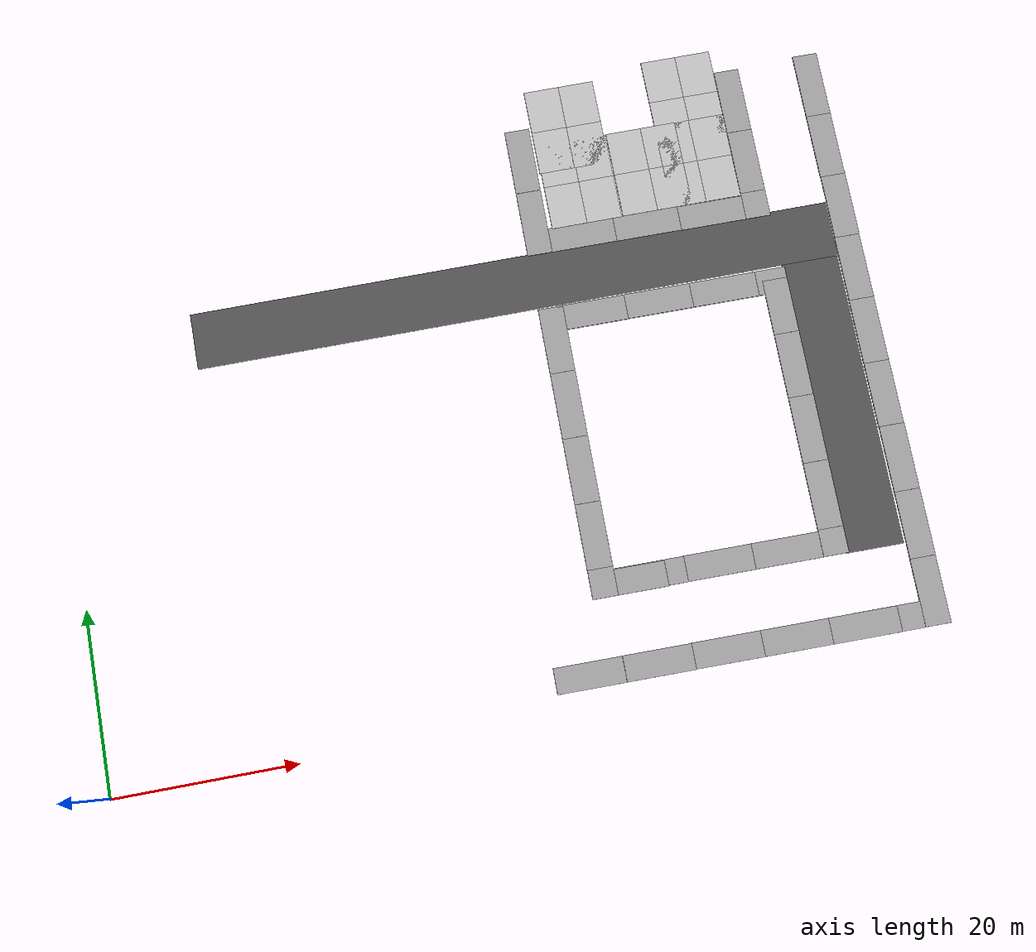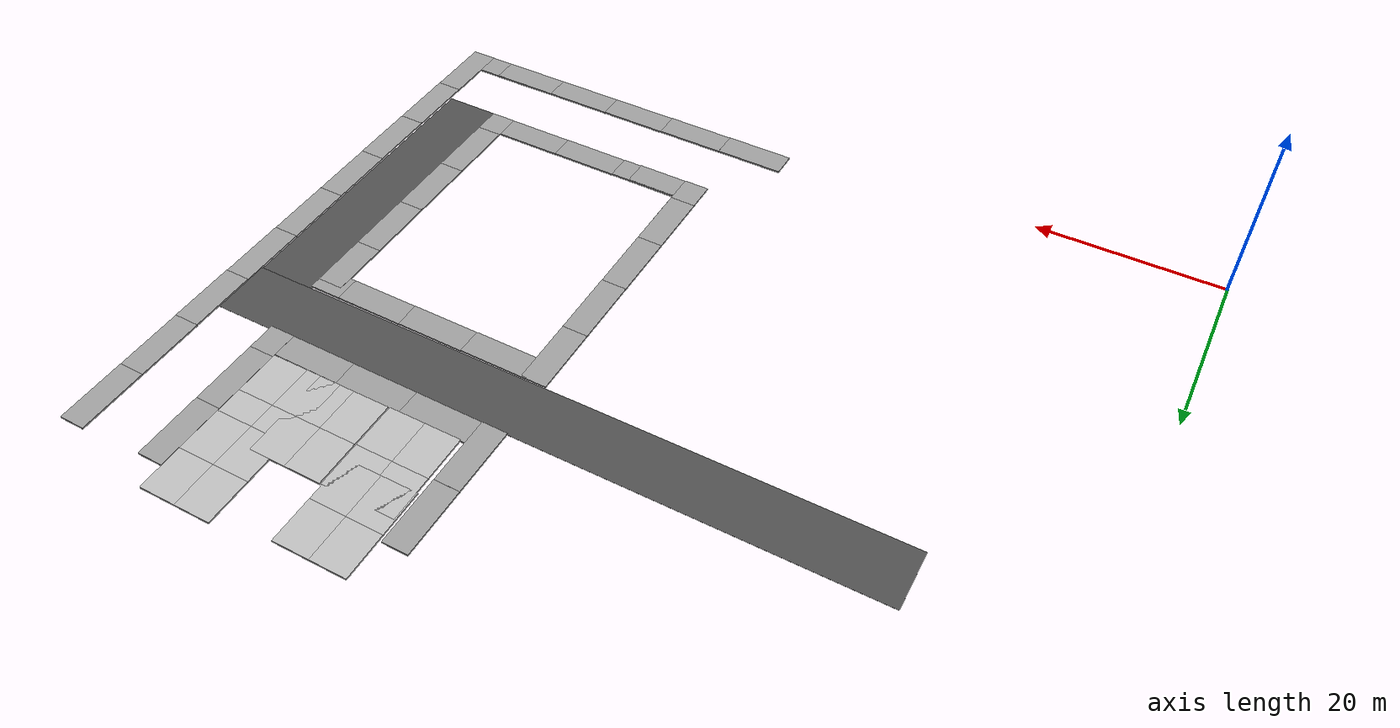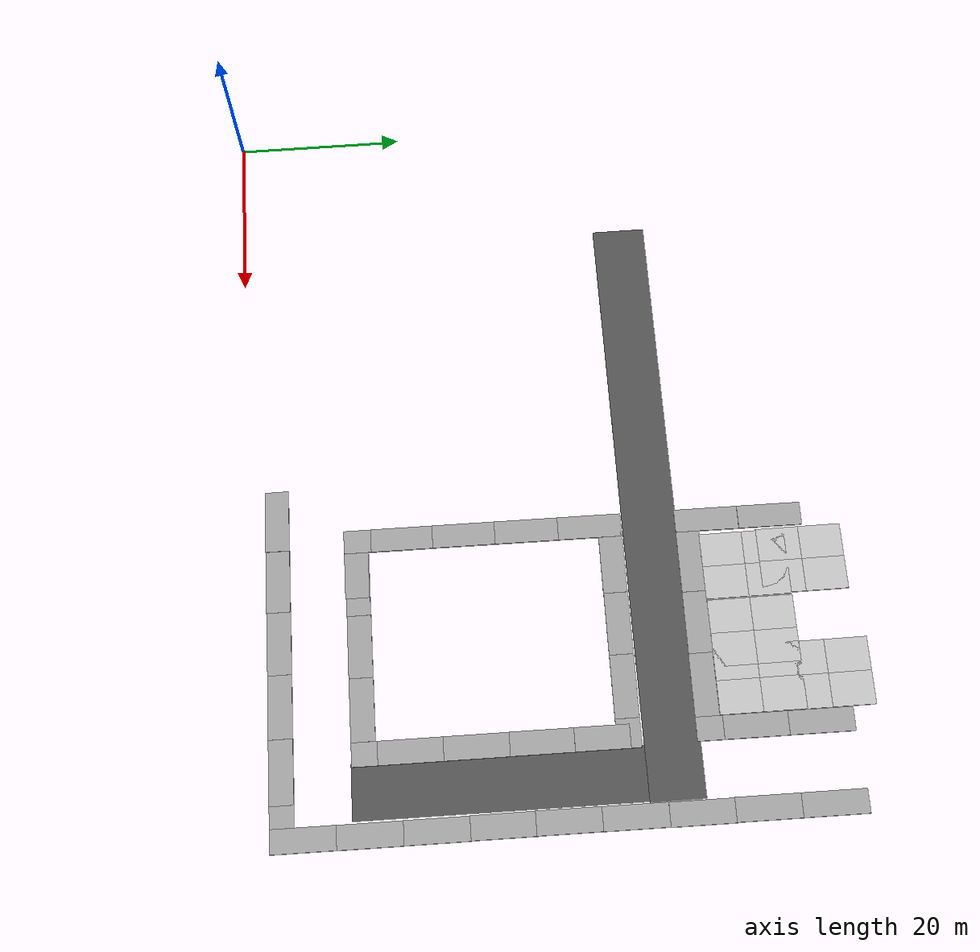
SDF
<sdf version="1.6">
 <world name="default">
  <model name="grey_wall_clone_clone_10_clone_2">
   <static>1</static>
   <link name="link">
    <pose>0 0 1.4 0 -0 0</pose>
    <collision name="collision"><geometry><box><size>7.5 0.2 2.8</size></box></geometry></collision>
    <visual name="visual">
     <cast_shadows>0</cast_shadows>
     <geometry><box><size>7.5 0.2 2.8</size></box></geometry>
     <material>
      <script>
       <uri>model://grey_wall/materials/scripts</uri>
       <uri>model://grey_wall/materials/textures</uri>
       <name>vrc/grey_wall</name>
      </script>
     </material>
    </visual>
   </link>
   <pose>51.6181 4.83221 -0.013794 -1.5862 0.002658 3.13547</pose>
  </model>
  <model name="grey_wall_clone_clone_10_clone_3">
   <static>1</static>
   <link name="link">
    <pose>0 0 1.4 0 -0 0</pose>
    <collision name="collision"><geometry><box><size>7.5 0.2 2.8</size></box></geometry></collision>
    <visual name="visual">
     <cast_shadows>0</cast_shadows>
     <geometry><box><size>7.5 0.2 2.8</size></box></geometry>
     <material>
      <script>
       <uri>model://grey_wall/materials/scripts</uri>
       <uri>model://grey_wall/materials/textures</uri>
       <name>vrc/grey_wall</name>
      </script>
     </material>
    </visual>
   </link>
   <pose>59.1382 4.80138 -0.016498 -1.5862 0.002658 3.13547</pose>
  </model>
  <model name="grey_wall_clone_clone_10_clone_3_clone">
   <static>1</static>
   <link name="link">
    <pose>0 0 1.4 0 -0 0</pose>
    <collision name="collision"><geometry><box><size>7.5 0.2 2.8</size></box></geometry></collision>
    <visual name="visual">
     <cast_shadows>0</cast_shadows>
     <geometry><box><size>7.5 0.2 2.8</size></box></geometry>
     <material>
      <script>
       <uri>model://grey_wall/materials/scripts</uri>
       <uri>model://grey_wall/materials/textures</uri>
       <name>vrc/grey_wall</name>
      </script>
     </material>
    </visual>
   </link>
   <pose>66.6247 4.78706 -0.016498 -1.5862 0.002658 3.13547</pose>
  </model>
  <model name="grey_wall_clone_clone_10_clone_3_clone_0">
   <static>1</static>
   <link name="link">
    <pose>0 0 1.4 0 -0 0</pose>
    <collision name="collision"><geometry><box><size>7.5 0.2 2.8</size></box></geometry></collision>
    <visual name="visual">
     <cast_shadows>0</cast_shadows>
     <geometry><box><size>7.5 0.2 2.8</size></box></geometry>
     <material>
      <script>
       <uri>model://grey_wall/materials/scripts</uri>
       <uri>model://grey_wall/materials/textures</uri>
       <name>vrc/grey_wall</name>
      </script>
     </material>
    </visual>
   </link>
   <pose>74.0722 4.73995 -0.016498 -1.5862 0.002658 3.13547</pose>
  </model>
  <model name="grey_wall_clone_clone_10_clone_3_clone_1">
   <static>1</static>
   <link name="link">
    <pose>0 0 1.4 0 -0 0</pose>
    <collision name="collision"><geometry><box><size>7.5 0.2 2.8</size></box></geometry></collision>
    <visual name="visual">
     <cast_shadows>0</cast_shadows>
     <geometry><box><size>7.5 0.2 2.8</size></box></geometry>
     <material>
      <script>
       <uri>model://grey_wall/materials/scripts</uri>
       <uri>model://grey_wall/materials/textures</uri>
       <name>vrc/grey_wall</name>
      </script>
     </material>
    </visual>
   </link>
   <pose>81.5711 4.6927 -0.016498 -1.5862 0.002658 3.13547</pose>
  </model>
  <model name="grey_wall_clone_clone_10_clone_3_clone_1_clone">
   <static>1</static>
   <link name="link">
    <pose>0 0 1.4 0 -0 0</pose>
    <collision name="collision"><geometry><box><size>7.5 0.2 2.8</size></box></geometry></collision>
    <visual name="visual">
     <cast_shadows>0</cast_shadows>
     <geometry><box><size>7.5 0.2 2.8</size></box></geometry>
     <material>
      <script>
       <uri>model://grey_wall/materials/scripts</uri>
       <uri>model://grey_wall/materials/textures</uri>
       <name>vrc/grey_wall</name>
      </script>
     </material>
    </visual>
   </link>
   <pose>84.1226 4.69737 -0.017706 -1.5862 0.002658 3.13547</pose>
  </model>
  <model name="grey_wall_clone_clone_9_clone_26_clone">
   <static>1</static>
   <link name="link">
    <pose>0 0 1.4 0 -0 0</pose>
    <collision name="collision"><geometry><box><size>7.5 0.2 2.8</size></box></geometry></collision>
    <visual name="visual">
     <cast_shadows>0</cast_shadows>
     <geometry><box><size>7.5 0.2 2.8</size></box></geometry>
     <material>
      <script>
       <uri>model://grey_wall/materials/scripts</uri>
       <uri>model://grey_wall/materials/textures</uri>
       <name>vrc/grey_wall</name>
      </script>
     </material>
    </visual>
   </link>
   <pose>90.6631 5.6235 -0.017166 -1.57343 0.001892 1.56332</pose>
  </model>
  <model name="grey_wall_clone_clone_9_clone_26_clone_0">
   <static>1</static>
   <link name="link">
    <pose>0 0 1.4 0 -0 0</pose>
    <collision name="collision"><geometry><box><size>7.5 0.2 2.8</size></box></geometry></collision>
    <visual name="visual">
     <cast_shadows>0</cast_shadows>
     <geometry><box><size>7.5 0.2 2.8</size></box></geometry>
     <material>
      <script>
       <uri>model://grey_wall/materials/scripts</uri>
       <uri>model://grey_wall/materials/textures</uri>
       <name>vrc/grey_wall</name>
      </script>
     </material>
    </visual>
   </link>
   <pose>90.7336 13.0047 -0.017166 -1.57343 0.001892 1.56332</pose>
  </model>
  <model name="grey_wall_clone_clone_9_clone_26_clone_0_clone">
   <static>1</static>
   <link name="link">
    <pose>0 0 1.4 0 -0 0</pose>
    <collision name="collision"><geometry><box><size>7.5 0.2 2.8</size></box></geometry></collision>
    <visual name="visual">
     <cast_shadows>0</cast_shadows>
     <geometry><box><size>7.5 0.2 2.8</size></box></geometry>
     <material>
      <script>
       <uri>model://grey_wall/materials/scripts</uri>
       <uri>model://grey_wall/materials/textures</uri>
       <name>vrc/grey_wall</name>
      </script>
     </material>
    </visual>
   </link>
   <pose>90.7792 20.4331 -0.017166 -1.57343 0.001892 1.56332</pose>
  </model>
  <model name="grey_wall_clone_clone_9_clone_26_clone_0_clone_0">
   <static>1</static>
   <link name="link">
    <pose>0 0 1.4 0 -0 0</pose>
    <collision name="collision"><geometry><box><size>7.5 0.2 2.8</size></box></geometry></collision>
    <visual name="visual">
     <cast_shadows>0</cast_shadows>
     <geometry><box><size>7.5 0.2 2.8</size></box></geometry>
     <material>
      <script>
       <uri>model://grey_wall/materials/scripts</uri>
       <uri>model://grey_wall/materials/textures</uri>
       <name>vrc/grey_wall</name>
      </script>
     </material>
    </visual>
   </link>
   <pose>90.7983 27.8211 -0.017166 -1.57343 0.001892 1.56332</pose>
  </model>
  <model name="grey_wall_clone_clone_9_clone_26_clone_0_clone_1">
   <static>1</static>
   <link name="link">
    <pose>0 0 1.4 0 -0 0</pose>
    <collision name="collision"><geometry><box><size>7.5 0.2 2.8</size></box></geometry></collision>
    <visual name="visual">
     <cast_shadows>0</cast_shadows>
     <geometry><box><size>7.5 0.2 2.8</size></box></geometry>
     <material>
      <script>
       <uri>model://grey_wall/materials/scripts</uri>
       <uri>model://grey_wall/materials/textures</uri>
       <name>vrc/grey_wall</name>
      </script>
     </material>
    </visual>
   </link>
   <pose>90.8333 35.096 -0.017166 -1.57343 0.001892 1.56332</pose>
  </model>
  <model name="grey_wall_clone_clone_9_clone_26_clone_0_clone_2">
   <static>1</static>
   <link name="link">
    <pose>0 0 1.4 0 -0 0</pose>
    <collision name="collision"><geometry><box><size>7.5 0.2 2.8</size></box></geometry></collision>
    <visual name="visual">
     <cast_shadows>0</cast_shadows>
     <geometry><box><size>7.5 0.2 2.8</size></box></geometry>
     <material>
      <script>
       <uri>model://grey_wall/materials/scripts</uri>
       <uri>model://grey_wall/materials/textures</uri>
       <name>vrc/grey_wall</name>
      </script>
     </material>
    </visual>
   </link>
   <pose>90.9059 42.4997 -0.017166 -1.57343 0.001892 1.56332</pose>
  </model>
  <model name="grey_wall_clone_clone_9_clone_26_clone_0_clone_2_clone">
   <static>1</static>
   <link name="link">
    <pose>0 0 1.4 0 -0 0</pose>
    <collision name="collision"><geometry><box><size>7.5 0.2 2.8</size></box></geometry></collision>
    <visual name="visual">
     <cast_shadows>0</cast_shadows>
     <geometry><box><size>7.5 0.2 2.8</size></box></geometry>
     <material>
      <script>
       <uri>model://grey_wall/materials/scripts</uri>
       <uri>model://grey_wall/materials/textures</uri>
       <name>vrc/grey_wall</name>
      </script>
     </material>
    </visual>
   </link>
   <pose>90.9958 49.9713 -0.017166 -1.57343 0.001892 1.56332</pose>
  </model>
  <model name="grey_wall_clone_clone_9_clone_26_clone_0_clone_2_clone_0">
   <static>1</static>
   <link name="link">
    <pose>0 0 1.4 0 -0 0</pose>
    <collision name="collision"><geometry><box><size>7.5 0.2 2.8</size></box></geometry></collision>
    <visual name="visual">
     <cast_shadows>0</cast_shadows>
     <geometry><box><size>7.5 0.2 2.8</size></box></geometry>
     <material>
      <script>
       <uri>model://grey_wall/materials/scripts</uri>
       <uri>model://grey_wall/materials/textures</uri>
       <name>vrc/grey_wall</name>
      </script>
     </material>
    </visual>
   </link>
   <pose>91.0088 57.3369 -0.017166 -1.57343 0.001892 1.56332</pose>
  </model>
  <model name="grey_wall_clone_clone_9_clone_26_clone_0_clone_2_clone_1">
   <static>1</static>
   <link name="link">
    <pose>0 0 1.4 0 -0 0</pose>
    <collision name="collision"><geometry><box><size>7.5 0.2 2.8</size></box></geometry></collision>
    <visual name="visual">
     <cast_shadows>0</cast_shadows>
     <geometry><box><size>7.5 0.2 2.8</size></box></geometry>
     <material>
      <script>
       <uri>model://grey_wall/materials/scripts</uri>
       <uri>model://grey_wall/materials/textures</uri>
       <name>vrc/grey_wall</name>
      </script>
     </material>
    </visual>
   </link>
   <pose>91.0605 64.7691 -0.017166 -1.57343 0.001892 1.56332</pose>
  </model>
  <model name="grey_wall_clone_clone_9_clone_26_clone_0_clone_2_clone_4_clone_2_clone_22">
   <static>1</static>
   <link name="link">
    <pose>0 0 1.4 0 -0 0</pose>
    <collision name="collision"><geometry><box><size>7.5 0.2 2.8</size></box></geometry></collision>
    <visual name="visual">
     <cast_shadows>0</cast_shadows>
     <geometry><box><size>7.5 0.2 2.8</size></box></geometry>
     <material>
      <script>
       <uri>model://grey_wall/materials/scripts</uri>
       <uri>model://grey_wall/materials/textures</uri>
       <name>vrc/grey_wall</name>
      </script>
     </material>
    </visual>
   </link>
   <pose>81.6977 64.4825 -0.017166 -1.57343 0.001892 1.56332</pose>
  </model>
  <model name="grey_wall_clone_clone_9_clone_26_clone_0_clone_2_clone_4_clone_2_clone_23">
   <static>1</static>
   <link name="link">
    <pose>0 0 1.4 0 -0 0</pose>
    <collision name="collision"><geometry><box><size>7.5 0.2 2.8</size></box></geometry></collision>
    <visual name="visual">
     <cast_shadows>0</cast_shadows>
     <geometry><box><size>7.5 0.2 2.8</size></box></geometry>
     <material>
      <script>
       <uri>model://grey_wall/materials/scripts</uri>
       <uri>model://grey_wall/materials/textures</uri>
       <name>vrc/grey_wall</name>
      </script>
     </material>
    </visual>
   </link>
   <pose>81.6523 57.0631 -0.017166 -1.57343 0.001892 1.56332</pose>
  </model>
  <model name="grey_wall_clone_clone_9_clone_26_clone_0_clone_2_clone_4_clone_2_clone_24">
   <static>1</static>
   <link name="link">
    <pose>0 0 1.4 0 -0 0</pose>
    <collision name="collision"><geometry><box><size>7.5 0.2 2.8</size></box></geometry></collision>
    <visual name="visual">
     <cast_shadows>0</cast_shadows>
     <geometry><box><size>7.5 0.2 2.8</size></box></geometry>
     <material>
      <script>
       <uri>model://grey_wall/materials/scripts</uri>
       <uri>model://grey_wall/materials/textures</uri>
       <name>vrc/grey_wall</name>
      </script>
     </material>
    </visual>
   </link>
   <pose>81.6323 53.952 -0.017166 -1.57343 0.001892 1.56332</pose>
  </model>
  <model name="grey_wall_clone_clone_9_clone_26_clone_0_clone_2_clone_4_clone_2_clone_25">
   <static>1</static>
   <link name="link">
    <pose>0 0 1.4 0 -0 0</pose>
    <collision name="collision"><geometry><box><size>7.5 0.2 2.8</size></box></geometry></collision>
    <visual name="visual">
     <cast_shadows>0</cast_shadows>
     <geometry><box><size>7.5 0.2 2.8</size></box></geometry>
     <material>
      <script>
       <uri>model://grey_wall/materials/scripts</uri>
       <uri>model://grey_wall/materials/textures</uri>
       <name>vrc/grey_wall</name>
      </script>
     </material>
    </visual>
   </link>
   <pose>56.5378 54.1438 -0.017166 -1.57343 0.001892 1.56332</pose>
  </model>
  <model name="grey_wall_clone_clone_9_clone_26_clone_0_clone_2_clone_4_clone_2_clone_26">
   <static>1</static>
   <link name="link">
    <pose>0 0 1.4 0 -0 0</pose>
    <collision name="collision"><geometry><box><size>7.5 0.2 2.8</size></box></geometry></collision>
    <visual name="visual">
     <cast_shadows>0</cast_shadows>
     <geometry><box><size>7.5 0.2 2.8</size></box></geometry>
     <material>
      <script>
       <uri>model://grey_wall/materials/scripts</uri>
       <uri>model://grey_wall/materials/textures</uri>
       <name>vrc/grey_wall</name>
      </script>
     </material>
    </visual>
   </link>
   <pose>56.5858 61.6588 -0.017166 -1.57343 0.001892 1.56332</pose>
  </model>
  <model name="grey_wall_clone_clone_9_clone_26_clone_0_clone_2_clone_4_clone_2_clone_53">
   <static>1</static>
   <link name="link">
    <pose>0 0 1.4 0 -0 0</pose>
    <collision name="collision"><geometry><box><size>7.5 0.2 2.8</size></box></geometry></collision>
    <visual name="visual">
     <cast_shadows>0</cast_shadows>
     <geometry><box><size>7.5 0.2 2.8</size></box></geometry>
     <material>
      <script>
       <uri>model://grey_wall/materials/scripts</uri>
       <uri>model://grey_wall/materials/textures</uri>
       <name>vrc/grey_wall</name>
      </script>
     </material>
    </visual>
   </link>
   <pose>56.4437 40.252 -0.017166 -1.57343 0.001892 1.56332</pose>
  </model>
  <model name="grey_wall_clone_clone_9_clone_26_clone_0_clone_2_clone_4_clone_2_clone_54">
   <static>1</static>
   <link name="link">
    <pose>0 0 1.4 0 -0 0</pose>
    <collision name="collision"><geometry><box><size>7.5 0.2 2.8</size></box></geometry></collision>
    <visual name="visual">
     <cast_shadows>0</cast_shadows>
     <geometry><box><size>7.5 0.2 2.8</size></box></geometry>
     <material>
      <script>
       <uri>model://grey_wall/materials/scripts</uri>
       <uri>model://grey_wall/materials/textures</uri>
       <name>vrc/grey_wall</name>
      </script>
     </material>
    </visual>
   </link>
   <pose>56.3934 32.7667 -0.017297 -1.57343 0.001892 1.56332</pose>
  </model>
  <model name="grey_wall_clone_clone_9_clone_26_clone_0_clone_2_clone_4_clone_2_clone_55">
   <static>1</static>
   <link name="link">
    <pose>0 0 1.4 0 -0 0</pose>
    <collision name="collision"><geometry><box><size>7.5 0.2 2.8</size></box></geometry></collision>
    <visual name="visual">
     <cast_shadows>0</cast_shadows>
     <geometry><box><size>7.5 0.2 2.8</size></box></geometry>
     <material>
      <script>
       <uri>model://grey_wall/materials/scripts</uri>
       <uri>model://grey_wall/materials/textures</uri>
       <name>vrc/grey_wall</name>
      </script>
     </material>
    </visual>
   </link>
   <pose>56.334 25.3981 -0.017166 -1.57343 0.001892 1.56332</pose>
  </model>
  <model name="grey_wall_clone_clone_9_clone_26_clone_0_clone_2_clone_4_clone_2_clone_56">
   <static>1</static>
   <link name="link">
    <pose>0 0 1.4 0 -0 0</pose>
    <collision name="collision"><geometry><box><size>7.5 0.2 2.8</size></box></geometry></collision>
    <visual name="visual">
     <cast_shadows>0</cast_shadows>
     <geometry><box><size>7.5 0.2 2.8</size></box></geometry>
     <material>
      <script>
       <uri>model://grey_wall/materials/scripts</uri>
       <uri>model://grey_wall/materials/textures</uri>
       <name>vrc/grey_wall</name>
      </script>
     </material>
    </visual>
   </link>
   <pose>56.286 18.1505 -0.017166 -1.57343 0.001892 1.56332</pose>
  </model>
  <model name="grey_wall_clone_clone_9_clone_26_clone_0_clone_2_clone_4_clone_2_clone_57">
   <static>1</static>
   <link name="link">
    <pose>0 0 1.4 0 -0 0</pose>
    <collision name="collision"><geometry><box><size>7.5 0.2 2.8</size></box></geometry></collision>
    <visual name="visual">
     <cast_shadows>0</cast_shadows>
     <geometry><box><size>7.5 0.2 2.8</size></box></geometry>
     <material>
      <script>
       <uri>model://grey_wall/materials/scripts</uri>
       <uri>model://grey_wall/materials/textures</uri>
       <name>vrc/grey_wall</name>
      </script>
     </material>
    </visual>
   </link>
   <pose>56.2753 14.9633 -0.017395 -1.57343 0.001892 1.56332</pose>
  </model>
  <model name="grey_wall_clone_clone_9_clone_26_clone_0_clone_2_clone_4_clone_2_clone_58">
   <static>1</static>
   <link name="link">
    <pose>0 0 1.4 0 -0 0</pose>
    <collision name="collision"><geometry><box><size>7.5 0.2 2.8</size></box></geometry></collision>
    <visual name="visual">
     <cast_shadows>0</cast_shadows>
     <geometry><box><size>7.5 0.2 2.8</size></box></geometry>
     <material>
      <script>
       <uri>model://grey_wall/materials/scripts</uri>
       <uri>model://grey_wall/materials/textures</uri>
       <name>vrc/grey_wall</name>
      </script>
     </material>
    </visual>
   </link>
   <pose>81.795 40.1296 -0.016945 -1.57343 0.001892 1.56332</pose>
  </model>
  <model name="grey_wall_clone_clone_9_clone_26_clone_0_clone_2_clone_4_clone_2_clone_59">
   <static>1</static>
   <link name="link">
    <pose>0 0 1.4 0 -0 0</pose>
    <collision name="collision"><geometry><box><size>7.5 0.2 2.8</size></box></geometry></collision>
    <visual name="visual">
     <cast_shadows>0</cast_shadows>
     <geometry><box><size>7.5 0.2 2.8</size></box></geometry>
     <material>
      <script>
       <uri>model://grey_wall/materials/scripts</uri>
       <uri>model://grey_wall/materials/textures</uri>
       <name>vrc/grey_wall</name>
      </script>
     </material>
    </visual>
   </link>
   <pose>81.751 32.7982 -0.017166 -1.57343 0.001892 1.56332</pose>
  </model>
  <model name="grey_wall_clone_clone_9_clone_26_clone_0_clone_2_clone_4_clone_2_clone_60">
   <static>1</static>
   <link name="link">
    <pose>0 0 1.4 0 -0 0</pose>
    <collision name="collision"><geometry><box><size>7.5 0.2 2.8</size></box></geometry></collision>
    <visual name="visual">
     <cast_shadows>0</cast_shadows>
     <geometry><box><size>7.5 0.2 2.8</size></box></geometry>
     <material>
      <script>
       <uri>model://grey_wall/materials/scripts</uri>
       <uri>model://grey_wall/materials/textures</uri>
       <name>vrc/grey_wall</name>
      </script>
     </material>
    </visual>
   </link>
   <pose>81.711 25.3318 -0.017166 -1.57343 0.001892 1.56332</pose>
  </model>
  <model name="grey_wall_clone_clone_9_clone_26_clone_0_clone_2_clone_4_clone_2_clone_61">
   <static>1</static>
   <link name="link">
    <pose>0 0 1.4 0 -0 0</pose>
    <collision name="collision"><geometry><box><size>7.5 0.2 2.8</size></box></geometry></collision>
    <visual name="visual">
     <cast_shadows>0</cast_shadows>
     <geometry><box><size>7.5 0.2 2.8</size></box></geometry>
     <material>
      <script>
       <uri>model://grey_wall/materials/scripts</uri>
       <uri>model://grey_wall/materials/textures</uri>
       <name>vrc/grey_wall</name>
      </script>
     </material>
    </visual>
   </link>
   <pose>81.661 17.9008 -0.017166 -1.57343 0.001892 1.56332</pose>
  </model>
  <model name="grey_wall_clone_clone_9_clone_26_clone_0_clone_2_clone_4_clone_2_clone_62">
   <static>1</static>
   <link name="link">
    <pose>0 0 1.4 0 -0 0</pose>
    <collision name="collision"><geometry><box><size>7.5 0.2 2.8</size></box></geometry></collision>
    <visual name="visual">
     <cast_shadows>0</cast_shadows>
     <geometry><box><size>7.5 0.2 2.8</size></box></geometry>
     <material>
      <script>
       <uri>model://grey_wall/materials/scripts</uri>
       <uri>model://grey_wall/materials/textures</uri>
       <name>vrc/grey_wall</name>
      </script>
     </material>
    </visual>
   </link>
   <pose>81.6398 14.9486 -0.017166 -1.57343 0.001892 1.56332</pose>
  </model>
  <model name="grey_wall_clone_clone_10_clone_23_clone_clone_2">
   <static>1</static>
   <link name="link">
    <pose>0 0 1.4 0 -0 0</pose>
    <collision name="collision"><geometry><box><size>7.5 0.2 2.8</size></box></geometry></collision>
    <visual name="visual">
     <cast_shadows>0</cast_shadows>
     <geometry><box><size>7.5 0.2 2.8</size></box></geometry>
     <material>
      <script>
       <uri>model://grey_wall/materials/scripts</uri>
       <uri>model://grey_wall/materials/textures</uri>
       <name>vrc/grey_wall</name>
      </script>
     </material>
    </visual>
   </link>
   <pose>75.0788 53.0508 -0.013396 -1.5862 0.002658 3.13547</pose>
  </model>
  <model name="grey_wall_clone_clone_10_clone_23_clone_clone_3">
   <static>1</static>
   <link name="link">
    <pose>0 0 1.4 0 -0 0</pose>
    <collision name="collision"><geometry><box><size>7.5 0.2 2.8</size></box></geometry></collision>
    <visual name="visual">
     <cast_shadows>0</cast_shadows>
     <geometry><box><size>7.5 0.2 2.8</size></box></geometry>
     <material>
      <script>
       <uri>model://grey_wall/materials/scripts</uri>
       <uri>model://grey_wall/materials/textures</uri>
       <name>vrc/grey_wall</name>
      </script>
     </material>
    </visual>
   </link>
   <pose>67.6313 53.1199 -0.013396 -1.5862 0.002658 3.13547</pose>
  </model>
  <model name="grey_wall_clone_clone_10_clone_23_clone_clone_4">
   <static>1</static>
   <link name="link">
    <pose>0 0 1.4 0 -0 0</pose>
    <collision name="collision"><geometry><box><size>7.5 0.2 2.8</size></box></geometry></collision>
    <visual name="visual">
     <cast_shadows>0</cast_shadows>
     <geometry><box><size>7.5 0.2 2.8</size></box></geometry>
     <material>
      <script>
       <uri>model://grey_wall/materials/scripts</uri>
       <uri>model://grey_wall/materials/textures</uri>
       <name>vrc/grey_wall</name>
      </script>
     </material>
    </visual>
   </link>
   <pose>60.2104 53.176 -0.013396 -1.5862 0.002658 3.13547</pose>
  </model>
  <model name="grey_wall_clone_clone_10_clone_23_clone_clone_5">
   <static>1</static>
   <link name="link">
    <pose>0 0 1.4 0 -0 0</pose>
    <collision name="collision"><geometry><box><size>7.5 0.2 2.8</size></box></geometry></collision>
    <visual name="visual">
     <cast_shadows>0</cast_shadows>
     <geometry><box><size>7.5 0.2 2.8</size></box></geometry>
     <material>
      <script>
       <uri>model://grey_wall/materials/scripts</uri>
       <uri>model://grey_wall/materials/textures</uri>
       <name>vrc/grey_wall</name>
      </script>
     </material>
    </visual>
   </link>
   <pose>74.611 43.9681 -0.012802 -1.5862 0.002658 3.13547</pose>
  </model>
  <model name="grey_wall_clone_clone_10_clone_23_clone_clone_6">
   <static>1</static>
   <link name="link">
    <pose>0 0 1.4 0 -0 0</pose>
    <collision name="collision"><geometry><box><size>7.5 0.2 2.8</size></box></geometry></collision>
    <visual name="visual">
     <cast_shadows>0</cast_shadows>
     <geometry><box><size>7.5 0.2 2.8</size></box></geometry>
     <material>
      <script>
       <uri>model://grey_wall/materials/scripts</uri>
       <uri>model://grey_wall/materials/textures</uri>
       <name>vrc/grey_wall</name>
      </script>
     </material>
    </visual>
   </link>
   <pose>67.1228 43.9971 -0.012703 -1.5862 0.002658 3.13547</pose>
  </model>
  <model name="grey_wall_clone_clone_10_clone_23_clone_clone_7">
   <static>1</static>
   <link name="link">
    <pose>0 0 1.4 0 -0 0</pose>
    <collision name="collision"><geometry><box><size>7.5 0.2 2.8</size></box></geometry></collision>
    <visual name="visual">
     <cast_shadows>0</cast_shadows>
     <geometry><box><size>7.5 0.2 2.8</size></box></geometry>
     <material>
      <script>
       <uri>model://grey_wall/materials/scripts</uri>
       <uri>model://grey_wall/materials/textures</uri>
       <name>vrc/grey_wall</name>
      </script>
     </material>
    </visual>
   </link>
   <pose>59.666 44.0142 -0.013396 -1.5862 0.002658 3.13547</pose>
  </model>
  <model name="grey_wall_clone_clone_10_clone_23_clone_clone_5_clone">
   <static>1</static>
   <link name="link">
    <pose>0 0 1.4 0 -0 0</pose>
    <collision name="collision"><geometry><box><size>7.5 0.2 2.8</size></box></geometry></collision>
    <visual name="visual">
     <cast_shadows>0</cast_shadows>
     <geometry><box><size>7.5 0.2 2.8</size></box></geometry>
     <material>
      <script>
       <uri>model://grey_wall/materials/scripts</uri>
       <uri>model://grey_wall/materials/textures</uri>
       <name>vrc/grey_wall</name>
      </script>
     </material>
    </visual>
   </link>
   <pose>78.0491 43.954 -0.012819 -1.5862 0.002658 3.13547</pose>
  </model>
  <model name="grey_wall_clone_clone_10_clone_23_clone_clone_5_clone_0">
   <static>1</static>
   <link name="link">
    <pose>0 0 1.4 0 -0 0</pose>
    <collision name="collision"><geometry><box><size>7.5 0.2 2.8</size></box></geometry></collision>
    <visual name="visual">
     <cast_shadows>0</cast_shadows>
     <geometry><box><size>7.5 0.2 2.8</size></box></geometry>
     <material>
      <script>
       <uri>model://grey_wall/materials/scripts</uri>
       <uri>model://grey_wall/materials/textures</uri>
       <name>vrc/grey_wall</name>
      </script>
     </material>
    </visual>
   </link>
   <pose>75.0764 14.0279 -0.012802 -1.5862 0.002658 3.13547</pose>
  </model>
  <model name="grey_wall_clone_clone_10_clone_23_clone_clone_5_clone_1">
   <static>1</static>
   <link name="link">
    <pose>0 0 1.4 0 -0 0</pose>
    <collision name="collision"><geometry><box><size>7.5 0.2 2.8</size></box></geometry></collision>
    <visual name="visual">
     <cast_shadows>0</cast_shadows>
     <geometry><box><size>7.5 0.2 2.8</size></box></geometry>
     <material>
      <script>
       <uri>model://grey_wall/materials/scripts</uri>
       <uri>model://grey_wall/materials/textures</uri>
       <name>vrc/grey_wall</name>
      </script>
     </material>
    </visual>
   </link>
   <pose>67.646 14.0599 -0.012802 -1.5862 0.002658 3.13547</pose>
  </model>
  <model name="grey_wall_clone_clone_10_clone_23_clone_clone_5_clone_2">
   <static>1</static>
   <link name="link">
    <pose>0 0 1.4 0 -0 0</pose>
    <collision name="collision"><geometry><box><size>7.5 0.2 2.8</size></box></geometry></collision>
    <visual name="visual">
     <cast_shadows>0</cast_shadows>
     <geometry><box><size>7.5 0.2 2.8</size></box></geometry>
     <material>
      <script>
       <uri>model://grey_wall/materials/scripts</uri>
       <uri>model://grey_wall/materials/textures</uri>
       <name>vrc/grey_wall</name>
      </script>
     </material>
    </visual>
   </link>
   <pose>60.212 14.0756 -0.012802 -1.5862 0.002658 3.13547</pose>
  </model>
  <model name="grey_wall_clone_clone_10_clone_23_clone_clone_5_clone_3">
   <static>1</static>
   <link name="link">
    <pose>0 0 1.4 0 -0 0</pose>
    <collision name="collision"><geometry><box><size>7.5 0.2 2.8</size></box></geometry></collision>
    <visual name="visual">
     <cast_shadows>0</cast_shadows>
     <geometry><box><size>7.5 0.2 2.8</size></box></geometry>
     <material>
      <script>
       <uri>model://grey_wall/materials/scripts</uri>
       <uri>model://grey_wall/materials/textures</uri>
       <name>vrc/grey_wall</name>
      </script>
     </material>
    </visual>
   </link>
   <pose>58.0749 14.0167 -0.012802 -1.5862 0.002658 3.13547</pose>
  </model>
  <model name="Road_clone">
   <static>1</static>
   <link name="link_0">
    <inertial>
     <mass>3902.93</mass>
     <inertia><ixx>13288.4</ixx><ixy>0</ixy><ixz>0</ixz><iyy>107351</iyy><iyz>0</iyz><izz>120639</izz></inertia>
    </inertial>
    <gravity>0</gravity>
    <self_collide>1</self_collide>
    <visual name="visual">
     <geometry><box><size>72.6629 6.39189 0.01701</size></box></geometry>
     <material>
      <lighting>1</lighting>
      <script><uri>file://media/materials/scripts/gazebo.material</uri><name>Gazebo/Road</name></script>
      <shader type="pixel"><normal_map>__default__</normal_map></shader>
      <ambient>0.1 0.1 0.1 1</ambient>
      <diffuse>0.8 0.8 0.8 1</diffuse>
      <specular>0.01 0.01 0.01 1</specular>
      <emissive>0 0 0 1</emissive>
     </material>
    </visual>
    <collision name="collision">
     <geometry><box><size>72.6629 6.39189 0.01701</size></box></geometry>
     <surface>
      <friction>
       <ode><mu>1</mu><mu2>1</mu2><fdir1>0 0 0</fdir1><slip1>0</slip1><slip2>0</slip2></ode>
       <torsional>
        <coefficient>1</coefficient>
        <patch_radius>0</patch_radius>
        <surface_radius>0</surface_radius>
        <use_patch_radius>1</use_patch_radius>
        <ode><slip>0</slip></ode>
       </torsional>
      </friction>
      <bounce><restitution_coefficient>0</restitution_coefficient><threshold>1e+06</threshold></bounce>
      <contact>
       <collide_without_contact>0</collide_without_contact>
       <collide_without_contact_bitmask>1</collide_without_contact_bitmask>
       <collide_bitmask>1</collide_bitmask>
       <ode>
        <soft_cfm>0</soft_cfm>
        <soft_erp>0.2</soft_erp>
        <kp>1e+13</kp>
        <kd>1</kd>
        <max_vel>0.01</max_vel>
        <min_depth>0</min_depth>
       </ode>
       <bullet>
        <split_impulse>1</split_impulse>
        <split_impulse_penetration_threshold>-0.01</split_impulse_penetration_threshold>
        <soft_cfm>0</soft_cfm>
        <soft_erp>0.2</soft_erp>
        <kp>1e+13</kp>
        <kd>1</kd>
       </bullet>
      </contact>
     </surface>
    </collision>
   </link>
   <static>0</static>
   <pose>51.7457 47.3568 0 0 -0 0</pose>
  </model>
  <model name="Road_0_clone">
   <static>1</static>
   <link name="link_0">
    <inertial>
     <mass>3902.93</mass>
     <inertia><ixx>13288.4</ixx><ixy>0</ixy><ixz>0</ixz><iyy>107351</iyy><iyz>0</iyz><izz>120639</izz></inertia>
    </inertial>
    <gravity>0</gravity>
    <self_collide>1</self_collide>
    <visual name="visual">
     <geometry><box><size>33.0622 6.39189 0.01701</size></box></geometry>
     <material>
      <lighting>1</lighting>
      <script><uri>file://media/materials/scripts/gazebo.material</uri><name>Gazebo/Road</name></script>
      <shader type="pixel"><normal_map>__default__</normal_map></shader>
      <ambient>0.1 0.1 0.1 1</ambient>
      <diffuse>0.8 0.8 0.8 1</diffuse>
      <specular>0.01 0.01 0.01 1</specular>
      <emissive>0 0 0 1</emissive>
     </material>
    </visual>
    <collision name="collision">
     <geometry><box><size>33.0622 6.39189 0.01701</size></box></geometry>
     <surface>
      <friction>
       <ode><mu>1</mu><mu2>1</mu2><fdir1>0 0 0</fdir1><slip1>0</slip1><slip2>0</slip2></ode>
       <torsional>
        <coefficient>1</coefficient>
        <patch_radius>0</patch_radius>
        <surface_radius>0</surface_radius>
        <use_patch_radius>1</use_patch_radius>
        <ode><slip>0</slip></ode>
       </torsional>
      </friction>
      <bounce><restitution_coefficient>0</restitution_coefficient><threshold>1e+06</threshold></bounce>
      <contact>
       <collide_without_contact>0</collide_without_contact>
       <collide_without_contact_bitmask>1</collide_without_contact_bitmask>
       <collide_bitmask>1</collide_bitmask>
       <ode>
        <soft_cfm>0</soft_cfm>
        <soft_erp>0.2</soft_erp>
        <kp>1e+13</kp>
        <kd>1</kd>
        <max_vel>0.01</max_vel>
        <min_depth>0</min_depth>
       </ode>
       <bullet>
        <split_impulse>1</split_impulse>
        <split_impulse_penetration_threshold>-0.01</split_impulse_penetration_threshold>
        <soft_cfm>0</soft_cfm>
        <soft_erp>0.2</soft_erp>
        <kp>1e+13</kp>
        <kd>1</kd>
       </bullet>
      </contact>
     </surface>
    </collision>
   </link>
   <static>0</static>
   <pose>84.6093 27.6474 0 0 0 -1.57903</pose>
  </model>
  <model name="mud_box">
   <static>1</static>
   <link name="link">
    <collision name="collision"><geometry><box><size>8 10 0.2</size></box></geometry></collision>
    <visual name="visual_1">
     <pose>-2 2.5 0 0 -0 0</pose>
     <cast_shadows>0</cast_shadows>
     <geometry><box><size>4 5 0.2</size></box></geometry>
     <material>
      <script>
       <uri>model://mud_box/materials/scripts</uri>
       <uri>model://mud_box/materials/textures</uri>
       <name>vrc/mud</name>
      </script>
     </material>
    </visual>
    <visual name="visual_2">
     <pose>2 2.5 0 0 -0 0</pose>
     <cast_shadows>0</cast_shadows>
     <geometry><box><size>4 5 0.2</size></box></geometry>
     <material>
      <script>
       <uri>model://mud_box/materials/scripts</uri>
       <uri>model://mud_box/materials/textures</uri>
       <name>vrc/mud</name>
      </script>
     </material>
    </visual>
    <visual name="visual_3">
     <pose>2 -2.5 0 0 -0 0</pose>
     <cast_shadows>0</cast_shadows>
     <geometry><box><size>4 5 0.2</size></box></geometry>
     <material>
      <script>
       <uri>model://mud_box/materials/scripts</uri>
       <uri>model://mud_box/materials/textures</uri>
       <name>vrc/mud</name>
      </script>
     </material>
    </visual>
    <visual name="visual_4">
     <pose>-2 -2.5 0 0 -0 0</pose>
     <cast_shadows>0</cast_shadows>
     <geometry><box><size>4 5 0.2</size></box></geometry>
     <material>
      <script>
       <uri>model://mud_box/materials/scripts</uri>
       <uri>model://mud_box/materials/textures</uri>
       <name>vrc/mud</name>
      </script>
     </material>
    </visual>
   </link>
   <pose>61.0221 58.0721 0 0 -0 0</pose>
  </model>
  <model name="mud_box_clone">
   <static>1</static>
   <link name="link">
    <collision name="collision"><geometry><box><size>8 10 0.2</size></box></geometry></collision>
    <visual name="visual_1">
     <pose>-2 2.5 0 0 -0 0</pose>
     <cast_shadows>0</cast_shadows>
     <geometry><box><size>4 5 0.2</size></box></geometry>
     <material>
      <script>
       <uri>model://mud_box/materials/scripts</uri>
       <uri>model://mud_box/materials/textures</uri>
       <name>vrc/mud</name>
      </script>
     </material>
    </visual>
    <visual name="visual_2">
     <pose>2 2.5 0 0 -0 0</pose>
     <cast_shadows>0</cast_shadows>
     <geometry><box><size>4 5 0.2</size></box></geometry>
     <material>
      <script>
       <uri>model://mud_box/materials/scripts</uri>
       <uri>model://mud_box/materials/textures</uri>
       <name>vrc/mud</name>
      </script>
     </material>
    </visual>
    <visual name="visual_3">
     <pose>2 -2.5 0 0 -0 0</pose>
     <cast_shadows>0</cast_shadows>
     <geometry><box><size>4 5 0.2</size></box></geometry>
     <material>
      <script>
       <uri>model://mud_box/materials/scripts</uri>
       <uri>model://mud_box/materials/textures</uri>
       <name>vrc/mud</name>
      </script>
     </material>
    </visual>
    <visual name="visual_4">
     <pose>-2 -2.5 0 0 -0 0</pose>
     <cast_shadows>0</cast_shadows>
     <geometry><box><size>4 5 0.2</size></box></geometry>
     <material>
      <script>
       <uri>model://mud_box/materials/scripts</uri>
       <uri>model://mud_box/materials/textures</uri>
       <name>vrc/mud</name>
      </script>
     </material>
    </visual>
   </link>
   <pose>69.1715 58.108 0 0 -0 0</pose>
  </model>
  <model name="mud_box_clone_0">
   <static>1</static>
   <link name="link">
    <collision name="collision"><geometry><box><size>8 10 0.2</size></box></geometry></collision>
    <visual name="visual_1">
     <pose>-2 2.5 0 0 -0 0</pose>
     <cast_shadows>0</cast_shadows>
     <geometry><box><size>4 5 0.2</size></box></geometry>
     <material>
      <script>
       <uri>model://mud_box/materials/scripts</uri>
       <uri>model://mud_box/materials/textures</uri>
       <name>vrc/mud</name>
      </script>
     </material>
    </visual>
    <visual name="visual_2">
     <pose>2 2.5 0 0 -0 0</pose>
     <cast_shadows>0</cast_shadows>
     <geometry><box><size>4 5 0.2</size></box></geometry>
     <material>
      <script>
       <uri>model://mud_box/materials/scripts</uri>
       <uri>model://mud_box/materials/textures</uri>
       <name>vrc/mud</name>
      </script>
     </material>
    </visual>
    <visual name="visual_3">
     <pose>2 -2.5 0 0 -0 0</pose>
     <cast_shadows>0</cast_shadows>
     <geometry><box><size>4 5 0.2</size></box></geometry>
     <material>
      <script>
       <uri>model://mud_box/materials/scripts</uri>
       <uri>model://mud_box/materials/textures</uri>
       <name>vrc/mud</name>
      </script>
     </material>
    </visual>
    <visual name="visual_4">
     <pose>-2 -2.5 0 0 -0 0</pose>
     <cast_shadows>0</cast_shadows>
     <geometry><box><size>4 5 0.2</size></box></geometry>
     <material>
      <script>
       <uri>model://mud_box/materials/scripts</uri>
       <uri>model://mud_box/materials/textures</uri>
       <name>vrc/mud</name>
      </script>
     </material>
    </visual>
   </link>
   <pose>74.7964 58.0926 0 0 -0 0</pose>
  </model>
  <model name="mud_box_clone_1">
   <static>1</static>
   <link name="link">
    <collision name="collision"><geometry><box><size>8 10 0.2</size></box></geometry></collision>
    <visual name="visual_1">
     <pose>-2 2.5 0 0 -0 0</pose>
     <cast_shadows>0</cast_shadows>
     <geometry><box><size>4 5 0.2</size></box></geometry>
     <material>
      <script>
       <uri>model://mud_box/materials/scripts</uri>
       <uri>model://mud_box/materials/textures</uri>
       <name>vrc/mud</name>
      </script>
     </material>
    </visual>
    <visual name="visual_2">
     <pose>2 2.5 0 0 -0 0</pose>
     <cast_shadows>0</cast_shadows>
     <geometry><box><size>4 5 0.2</size></box></geometry>
     <material>
      <script>
       <uri>model://mud_box/materials/scripts</uri>
       <uri>model://mud_box/materials/textures</uri>
       <name>vrc/mud</name>
      </script>
     </material>
    </visual>
    <visual name="visual_3">
     <pose>2 -2.5 0 0 -0 0</pose>
     <cast_shadows>0</cast_shadows>
     <geometry><box><size>4 5 0.2</size></box></geometry>
     <material>
      <script>
       <uri>model://mud_box/materials/scripts</uri>
       <uri>model://mud_box/materials/textures</uri>
       <name>vrc/mud</name>
      </script>
     </material>
    </visual>
    <visual name="visual_4">
     <pose>-2 -2.5 0 0 -0 0</pose>
     <cast_shadows>0</cast_shadows>
     <geometry><box><size>4 5 0.2</size></box></geometry>
     <material>
      <script>
       <uri>model://mud_box/materials/scripts</uri>
       <uri>model://mud_box/materials/textures</uri>
       <name>vrc/mud</name>
      </script>
     </material>
    </visual>
   </link>
   <pose>74.8483 65.9909 0 0 -0 0</pose>
  </model>
  <model name="mud_box_clone_9">
   <static>1</static>
   <link name="link">
    <collision name="collision"><geometry><box><size>8 10 0.2</size></box></geometry></collision>
    <visual name="visual_1">
     <pose>-2 2.5 0 0 -0 0</pose>
     <cast_shadows>0</cast_shadows>
     <geometry><box><size>4 5 0.2</size></box></geometry>
     <material>
      <script>
       <uri>model://mud_box/materials/scripts</uri>
       <uri>model://mud_box/materials/textures</uri>
       <name>vrc/mud</name>
      </script>
     </material>
    </visual>
    <visual name="visual_2">
     <pose>2 2.5 0 0 -0 0</pose>
     <cast_shadows>0</cast_shadows>
     <geometry><box><size>4 5 0.2</size></box></geometry>
     <material>
      <script>
       <uri>model://mud_box/materials/scripts</uri>
       <uri>model://mud_box/materials/textures</uri>
       <name>vrc/mud</name>
      </script>
     </material>
    </visual>
    <visual name="visual_3">
     <pose>2 -2.5 0 0 -0 0</pose>
     <cast_shadows>0</cast_shadows>
     <geometry><box><size>4 5 0.2</size></box></geometry>
     <material>
      <script>
       <uri>model://mud_box/materials/scripts</uri>
       <uri>model://mud_box/materials/textures</uri>
       <name>vrc/mud</name>
      </script>
     </material>
    </visual>
    <visual name="visual_4">
     <pose>-2 -2.5 0 0 -0 0</pose>
     <cast_shadows>0</cast_shadows>
     <geometry><box><size>4 5 0.2</size></box></geometry>
     <material>
      <script>
       <uri>model://mud_box/materials/scripts</uri>
       <uri>model://mud_box/materials/textures</uri>
       <name>vrc/mud</name>
      </script>
     </material>
    </visual>
   </link>
   <pose>60.8835 64.8066 0 0 -0 0</pose>
  </model>
 </world>
</sdf>
